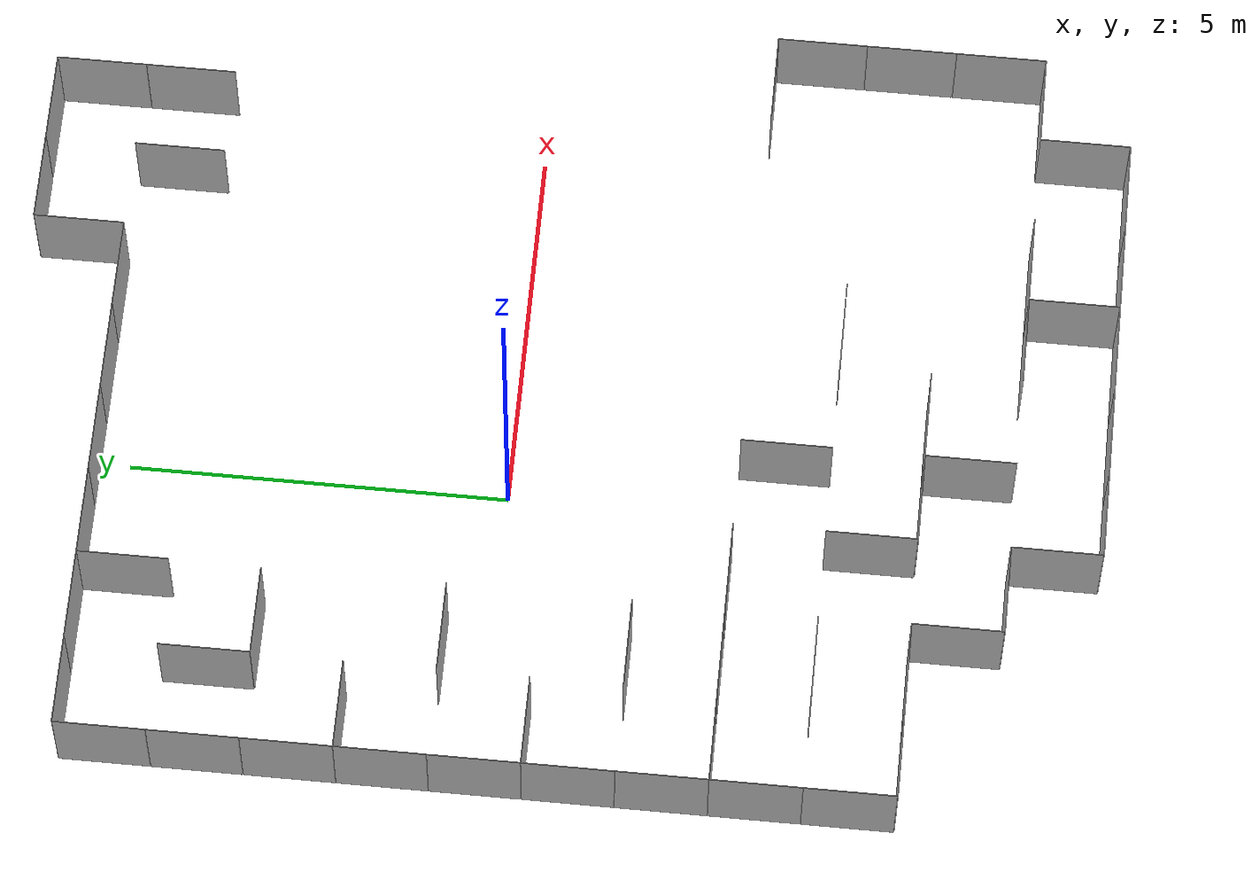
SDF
<sdf version="1.4">
 <world name="default">
  <model name="small_wall_117">
   <static>true</static>
   <link name="small_wall_117_link">
    <pose>2.4 -3.6 0 0 0 -3.14159</pose>
    <collision name="small_wall_117_collision">
     <geometry><mesh><uri>model://small_wall/meshes/small_wall.dae</uri><scale>1 1 1</scale></mesh></geometry>
    </collision>
    <visual name="small_wall_117_visual">
     <cast_shadows>false</cast_shadows>
     <geometry><mesh><uri>model://small_wall/meshes/small_wall.dae</uri><scale>1 1 1</scale></mesh></geometry>
    </visual>
   </link>
  </model>
  <model name="small_wall_118">
   <static>true</static>
   <link name="small_wall_118_link">
    <pose>1.2 -3.6 0 0 0 -4.71239</pose>
    <collision name="small_wall_118_collision">
     <geometry><mesh><uri>model://small_wall/meshes/small_wall.dae</uri><scale>1 1 1</scale></mesh></geometry>
    </collision>
    <visual name="small_wall_118_visual">
     <cast_shadows>false</cast_shadows>
     <geometry><mesh><uri>model://small_wall/meshes/small_wall.dae</uri><scale>1 1 1</scale></mesh></geometry>
    </visual>
   </link>
  </model>
  <model name="small_wall_119">
   <static>true</static>
   <link name="small_wall_119_link">
    <pose>-1.2 -4.8 0 0 0 -1.5708</pose>
    <collision name="small_wall_119_collision">
     <geometry><mesh><uri>model://small_wall/meshes/small_wall.dae</uri><scale>1 1 1</scale></mesh></geometry>
    </collision>
    <visual name="small_wall_119_visual">
     <cast_shadows>false</cast_shadows>
     <geometry><mesh><uri>model://small_wall/meshes/small_wall.dae</uri><scale>1 1 1</scale></mesh></geometry>
    </visual>
   </link>
  </model>
  <model name="small_wall_120">
   <static>true</static>
   <link name="small_wall_120_link">
    <pose>0 -6 0 0 0 0</pose>
    <collision name="small_wall_120_collision">
     <geometry><mesh><uri>model://small_wall/meshes/small_wall.dae</uri><scale>1 1 1</scale></mesh></geometry>
    </collision>
    <visual name="small_wall_120_visual">
     <cast_shadows>false</cast_shadows>
     <geometry><mesh><uri>model://small_wall/meshes/small_wall.dae</uri><scale>1 1 1</scale></mesh></geometry>
    </visual>
   </link>
  </model>
  <model name="small_wall_121">
   <static>true</static>
   <link name="small_wall_121_link">
    <pose>1.2 -4.8 0 0 0 -3.14159</pose>
    <collision name="small_wall_121_collision">
     <geometry><mesh><uri>model://small_wall/meshes/small_wall.dae</uri><scale>1 1 1</scale></mesh></geometry>
    </collision>
    <visual name="small_wall_121_visual">
     <cast_shadows>false</cast_shadows>
     <geometry><mesh><uri>model://small_wall/meshes/small_wall.dae</uri><scale>1 1 1</scale></mesh></geometry>
    </visual>
   </link>
  </model>
  <model name="small_wall_122">
   <static>true</static>
   <link name="small_wall_122_link">
    <pose>-2.4 2.4 0 0 0 0</pose>
    <collision name="small_wall_122_collision">
     <geometry><mesh><uri>model://small_wall/meshes/small_wall.dae</uri><scale>1 1 1</scale></mesh></geometry>
    </collision>
    <visual name="small_wall_122_visual">
     <cast_shadows>false</cast_shadows>
     <geometry><mesh><uri>model://small_wall/meshes/small_wall.dae</uri><scale>1 1 1</scale></mesh></geometry>
    </visual>
   </link>
  </model>
  <model name="small_wall_123">
   <static>true</static>
   <link name="small_wall_123_link">
    <pose>-3.6 3.6 0 0 0 -1.5708</pose>
    <collision name="small_wall_123_collision">
     <geometry><mesh><uri>model://small_wall/meshes/small_wall.dae</uri><scale>1 1 1</scale></mesh></geometry>
    </collision>
    <visual name="small_wall_123_visual">
     <cast_shadows>false</cast_shadows>
     <geometry><mesh><uri>model://small_wall/meshes/small_wall.dae</uri><scale>1 1 1</scale></mesh></geometry>
    </visual>
   </link>
  </model>
  <model name="small_wall_124">
   <static>true</static>
   <link name="small_wall_124_link">
    <pose>-3.6 3.6 0 0 0 -4.71239</pose>
    <collision name="small_wall_124_collision">
     <geometry><mesh><uri>model://small_wall/meshes/small_wall.dae</uri><scale>1 1 1</scale></mesh></geometry>
    </collision>
    <visual name="small_wall_124_visual">
     <cast_shadows>false</cast_shadows>
     <geometry><mesh><uri>model://small_wall/meshes/small_wall.dae</uri><scale>1 1 1</scale></mesh></geometry>
    </visual>
   </link>
  </model>
  <model name="small_wall_125">
   <static>true</static>
   <link name="small_wall_125_link">
    <pose>-3.6 4.8 0 0 0 -4.71239</pose>
    <collision name="small_wall_125_collision">
     <geometry><mesh><uri>model://small_wall/meshes/small_wall.dae</uri><scale>1 1 1</scale></mesh></geometry>
    </collision>
    <visual name="small_wall_125_visual">
     <cast_shadows>false</cast_shadows>
     <geometry><mesh><uri>model://small_wall/meshes/small_wall.dae</uri><scale>1 1 1</scale></mesh></geometry>
    </visual>
   </link>
  </model>
  <model name="small_wall_126">
   <static>true</static>
   <link name="small_wall_126_link">
    <pose>-3.6 4.8 0 0 0 0</pose>
    <collision name="small_wall_126_collision">
     <geometry><mesh><uri>model://small_wall/meshes/small_wall.dae</uri><scale>1 1 1</scale></mesh></geometry>
    </collision>
    <visual name="small_wall_126_visual">
     <cast_shadows>false</cast_shadows>
     <geometry><mesh><uri>model://small_wall/meshes/small_wall.dae</uri><scale>1 1 1</scale></mesh></geometry>
    </visual>
   </link>
  </model>
  <model name="small_wall_127">
   <static>true</static>
   <link name="small_wall_127_link">
    <pose>-2.4 4.8 0 0 0 0</pose>
    <collision name="small_wall_127_collision">
     <geometry><mesh><uri>model://small_wall/meshes/small_wall.dae</uri><scale>1 1 1</scale></mesh></geometry>
    </collision>
    <visual name="small_wall_127_visual">
     <cast_shadows>false</cast_shadows>
     <geometry><mesh><uri>model://small_wall/meshes/small_wall.dae</uri><scale>1 1 1</scale></mesh></geometry>
    </visual>
   </link>
  </model>
  <model name="small_wall_128">
   <static>true</static>
   <link name="small_wall_128_link">
    <pose>-2.4 4.8 0 0 0 -1.5708</pose>
    <collision name="small_wall_128_collision">
     <geometry><mesh><uri>model://small_wall/meshes/small_wall.dae</uri><scale>1 1 1</scale></mesh></geometry>
    </collision>
    <visual name="small_wall_128_visual">
     <cast_shadows>false</cast_shadows>
     <geometry><mesh><uri>model://small_wall/meshes/small_wall.dae</uri><scale>1 1 1</scale></mesh></geometry>
    </visual>
   </link>
  </model>
  <model name="small_wall_129">
   <static>true</static>
   <link name="small_wall_129_link">
    <pose>-1.2 4.8 0 0 0 0</pose>
    <collision name="small_wall_129_collision">
     <geometry><mesh><uri>model://small_wall/meshes/small_wall.dae</uri><scale>1 1 1</scale></mesh></geometry>
    </collision>
    <visual name="small_wall_129_visual">
     <cast_shadows>false</cast_shadows>
     <geometry><mesh><uri>model://small_wall/meshes/small_wall.dae</uri><scale>1 1 1</scale></mesh></geometry>
    </visual>
   </link>
  </model>
  <model name="small_wall_130">
   <static>true</static>
   <link name="small_wall_130_link">
    <pose>0 4.8 0 0 0 0</pose>
    <collision name="small_wall_130_collision">
     <geometry><mesh><uri>model://small_wall/meshes/small_wall.dae</uri><scale>1 1 1</scale></mesh></geometry>
    </collision>
    <visual name="small_wall_130_visual">
     <cast_shadows>false</cast_shadows>
     <geometry><mesh><uri>model://small_wall/meshes/small_wall.dae</uri><scale>1 1 1</scale></mesh></geometry>
    </visual>
   </link>
  </model>
  <model name="small_wall_131">
   <static>true</static>
   <link name="small_wall_131_link">
    <pose>-4.8 2.4 0 0 0 -1.5708</pose>
    <collision name="small_wall_131_collision">
     <geometry><mesh><uri>model://small_wall/meshes/small_wall.dae</uri><scale>1 1 1</scale></mesh></geometry>
    </collision>
    <visual name="small_wall_131_visual">
     <cast_shadows>false</cast_shadows>
     <geometry><mesh><uri>model://small_wall/meshes/small_wall.dae</uri><scale>1 1 1</scale></mesh></geometry>
    </visual>
   </link>
  </model>
  <model name="small_wall_132">
   <static>true</static>
   <link name="small_wall_132_link">
    <pose>-4.8 1.2 0 0 0 -1.5708</pose>
    <collision name="small_wall_132_collision">
     <geometry><mesh><uri>model://small_wall/meshes/small_wall.dae</uri><scale>1 1 1</scale></mesh></geometry>
    </collision>
    <visual name="small_wall_132_visual">
     <cast_shadows>false</cast_shadows>
     <geometry><mesh><uri>model://small_wall/meshes/small_wall.dae</uri><scale>1 1 1</scale></mesh></geometry>
    </visual>
   </link>
  </model>
  <model name="small_wall_133">
   <static>true</static>
   <link name="small_wall_133_link">
    <pose>-3.6 2.4 0 0 0 -3.14159</pose>
    <collision name="small_wall_133_collision">
     <geometry><mesh><uri>model://small_wall/meshes/small_wall.dae</uri><scale>1 1 1</scale></mesh></geometry>
    </collision>
    <visual name="small_wall_133_visual">
     <cast_shadows>false</cast_shadows>
     <geometry><mesh><uri>model://small_wall/meshes/small_wall.dae</uri><scale>1 1 1</scale></mesh></geometry>
    </visual>
   </link>
  </model>
  <model name="small_wall_134">
   <static>true</static>
   <link name="small_wall_134_link">
    <pose>-3.6 0 0 0 0 -4.71239</pose>
    <collision name="small_wall_134_collision">
     <geometry><mesh><uri>model://small_wall/meshes/small_wall.dae</uri><scale>1 1 1</scale></mesh></geometry>
    </collision>
    <visual name="small_wall_134_visual">
     <cast_shadows>false</cast_shadows>
     <geometry><mesh><uri>model://small_wall/meshes/small_wall.dae</uri><scale>1 1 1</scale></mesh></geometry>
    </visual>
   </link>
  </model>
  <model name="small_wall_135">
   <static>true</static>
   <link name="small_wall_135_link">
    <pose>-2.4 0 0 0 0 0</pose>
    <collision name="small_wall_135_collision">
     <geometry><mesh><uri>model://small_wall/meshes/small_wall.dae</uri><scale>1 1 1</scale></mesh></geometry>
    </collision>
    <visual name="small_wall_135_visual">
     <cast_shadows>false</cast_shadows>
     <geometry><mesh><uri>model://small_wall/meshes/small_wall.dae</uri><scale>1 1 1</scale></mesh></geometry>
    </visual>
   </link>
  </model>
  <model name="small_wall_136">
   <static>true</static>
   <link name="small_wall_136_link">
    <pose>-3.6 0 0 0 0 -3.14159</pose>
    <collision name="small_wall_136_collision">
     <geometry><mesh><uri>model://small_wall/meshes/small_wall.dae</uri><scale>1 1 1</scale></mesh></geometry>
    </collision>
    <visual name="small_wall_136_visual">
     <cast_shadows>false</cast_shadows>
     <geometry><mesh><uri>model://small_wall/meshes/small_wall.dae</uri><scale>1 1 1</scale></mesh></geometry>
    </visual>
   </link>
  </model>
  <model name="small_wall_137">
   <static>true</static>
   <link name="small_wall_137_link">
    <pose>-2.4 -1.2 0 0 0 -3.14159</pose>
    <collision name="small_wall_137_collision">
     <geometry><mesh><uri>model://small_wall/meshes/small_wall.dae</uri><scale>1 1 1</scale></mesh></geometry>
    </collision>
    <visual name="small_wall_137_visual">
     <cast_shadows>false</cast_shadows>
     <geometry><mesh><uri>model://small_wall/meshes/small_wall.dae</uri><scale>1 1 1</scale></mesh></geometry>
    </visual>
   </link>
  </model>
  <model name="small_wall_138">
   <static>true</static>
   <link name="small_wall_138_link">
    <pose>-3.6 -1.2 0 0 0 -4.71239</pose>
    <collision name="small_wall_138_collision">
     <geometry><mesh><uri>model://small_wall/meshes/small_wall.dae</uri><scale>1 1 1</scale></mesh></geometry>
    </collision>
    <visual name="small_wall_138_visual">
     <cast_shadows>false</cast_shadows>
     <geometry><mesh><uri>model://small_wall/meshes/small_wall.dae</uri><scale>1 1 1</scale></mesh></geometry>
    </visual>
   </link>
  </model>
  <model name="small_wall_139">
   <static>true</static>
   <link name="small_wall_139_link">
    <pose>-3.6 -2.4 0 0 0 -4.71239</pose>
    <collision name="small_wall_139_collision">
     <geometry><mesh><uri>model://small_wall/meshes/small_wall.dae</uri><scale>1 1 1</scale></mesh></geometry>
    </collision>
    <visual name="small_wall_139_visual">
     <cast_shadows>false</cast_shadows>
     <geometry><mesh><uri>model://small_wall/meshes/small_wall.dae</uri><scale>1 1 1</scale></mesh></geometry>
    </visual>
   </link>
  </model>
  <model name="small_wall_140">
   <static>true</static>
   <link name="small_wall_140_link">
    <pose>1.2 4.8 0 0 0 0</pose>
    <collision name="small_wall_140_collision">
     <geometry><mesh><uri>model://small_wall/meshes/small_wall.dae</uri><scale>1 1 1</scale></mesh></geometry>
    </collision>
    <visual name="small_wall_140_visual">
     <cast_shadows>false</cast_shadows>
     <geometry><mesh><uri>model://small_wall/meshes/small_wall.dae</uri><scale>1 1 1</scale></mesh></geometry>
    </visual>
   </link>
  </model>
  <model name="small_wall_141">
   <static>true</static>
   <link name="small_wall_141_link">
    <pose>2.4 4.8 0 0 0 0</pose>
    <collision name="small_wall_141_collision">
     <geometry><mesh><uri>model://small_wall/meshes/small_wall.dae</uri><scale>1 1 1</scale></mesh></geometry>
    </collision>
    <visual name="small_wall_141_visual">
     <cast_shadows>false</cast_shadows>
     <geometry><mesh><uri>model://small_wall/meshes/small_wall.dae</uri><scale>1 1 1</scale></mesh></geometry>
    </visual>
   </link>
  </model>
  <model name="small_wall_142">
   <static>true</static>
   <link name="small_wall_142_link">
    <pose>4.8 4.8 0 0 0 -4.71239</pose>
    <collision name="small_wall_142_collision">
     <geometry><mesh><uri>model://small_wall/meshes/small_wall.dae</uri><scale>1 1 1</scale></mesh></geometry>
    </collision>
    <visual name="small_wall_142_visual">
     <cast_shadows>false</cast_shadows>
     <geometry><mesh><uri>model://small_wall/meshes/small_wall.dae</uri><scale>1 1 1</scale></mesh></geometry>
    </visual>
   </link>
  </model>
  <model name="small_wall_143">
   <static>true</static>
   <link name="small_wall_143_link">
    <pose>2.4 6 0 0 0 -1.5708</pose>
    <collision name="small_wall_143_collision">
     <geometry><mesh><uri>model://small_wall/meshes/small_wall.dae</uri><scale>1 1 1</scale></mesh></geometry>
    </collision>
    <visual name="small_wall_143_visual">
     <cast_shadows>false</cast_shadows>
     <geometry><mesh><uri>model://small_wall/meshes/small_wall.dae</uri><scale>1 1 1</scale></mesh></geometry>
    </visual>
   </link>
  </model>
  <model name="small_wall_144">
   <static>true</static>
   <link name="small_wall_144_link">
    <pose>3.6 6 0 0 0 0</pose>
    <collision name="small_wall_144_collision">
     <geometry><mesh><uri>model://small_wall/meshes/small_wall.dae</uri><scale>1 1 1</scale></mesh></geometry>
    </collision>
    <visual name="small_wall_144_visual">
     <cast_shadows>false</cast_shadows>
     <geometry><mesh><uri>model://small_wall/meshes/small_wall.dae</uri><scale>1 1 1</scale></mesh></geometry>
    </visual>
   </link>
  </model>
  <model name="small_wall_145">
   <static>true</static>
   <link name="small_wall_145_link">
    <pose>4.8 6 0 0 0 0</pose>
    <collision name="small_wall_145_collision">
     <geometry><mesh><uri>model://small_wall/meshes/small_wall.dae</uri><scale>1 1 1</scale></mesh></geometry>
    </collision>
    <visual name="small_wall_145_visual">
     <cast_shadows>false</cast_shadows>
     <geometry><mesh><uri>model://small_wall/meshes/small_wall.dae</uri><scale>1 1 1</scale></mesh></geometry>
    </visual>
   </link>
  </model>
  <model name="small_wall_146">
   <static>true</static>
   <link name="small_wall_146_link">
    <pose>4.8 6 0 0 0 -1.5708</pose>
    <collision name="small_wall_146_collision">
     <geometry><mesh><uri>model://small_wall/meshes/small_wall.dae</uri><scale>1 1 1</scale></mesh></geometry>
    </collision>
    <visual name="small_wall_146_visual">
     <cast_shadows>false</cast_shadows>
     <geometry><mesh><uri>model://small_wall/meshes/small_wall.dae</uri><scale>1 1 1</scale></mesh></geometry>
    </visual>
   </link>
  </model>
  <model name="small_wall_147">
   <static>true</static>
   <link name="small_wall_147_link">
    <pose>4.8 4.8 0 0 0 -1.5708</pose>
    <collision name="small_wall_147_collision">
     <geometry><mesh><uri>model://small_wall/meshes/small_wall.dae</uri><scale>1 1 1</scale></mesh></geometry>
    </collision>
    <visual name="small_wall_147_visual">
     <cast_shadows>false</cast_shadows>
     <geometry><mesh><uri>model://small_wall/meshes/small_wall.dae</uri><scale>1 1 1</scale></mesh></geometry>
    </visual>
   </link>
  </model>
  <model name="small_wall_148">
   <static>true</static>
   <link name="small_wall_148_link">
    <pose>-3.6 -2.4 0 0 0 -3.14159</pose>
    <collision name="small_wall_148_collision">
     <geometry><mesh><uri>model://small_wall/meshes/small_wall.dae</uri><scale>1 1 1</scale></mesh></geometry>
    </collision>
    <visual name="small_wall_148_visual">
     <cast_shadows>false</cast_shadows>
     <geometry><mesh><uri>model://small_wall/meshes/small_wall.dae</uri><scale>1 1 1</scale></mesh></geometry>
    </visual>
   </link>
  </model>
  <model name="small_wall_149">
   <static>true</static>
   <link name="small_wall_149_link">
    <pose>-2.4 -2.4 0 0 0 -3.14159</pose>
    <collision name="small_wall_149_collision">
     <geometry><mesh><uri>model://small_wall/meshes/small_wall.dae</uri><scale>1 1 1</scale></mesh></geometry>
    </collision>
    <visual name="small_wall_149_visual">
     <cast_shadows>false</cast_shadows>
     <geometry><mesh><uri>model://small_wall/meshes/small_wall.dae</uri><scale>1 1 1</scale></mesh></geometry>
    </visual>
   </link>
  </model>
  <model name="small_wall_150">
   <static>true</static>
   <link name="small_wall_150_link">
    <pose>-1.2 -2.4 0 0 0 -3.14159</pose>
    <collision name="small_wall_150_collision">
     <geometry><mesh><uri>model://small_wall/meshes/small_wall.dae</uri><scale>1 1 1</scale></mesh></geometry>
    </collision>
    <visual name="small_wall_150_visual">
     <cast_shadows>false</cast_shadows>
     <geometry><mesh><uri>model://small_wall/meshes/small_wall.dae</uri><scale>1 1 1</scale></mesh></geometry>
    </visual>
   </link>
  </model>
  <model name="small_wall_151">
   <static>true</static>
   <link name="small_wall_151_link">
    <pose>-2.4 -3.6 0 0 0 -3.14159</pose>
    <collision name="small_wall_151_collision">
     <geometry><mesh><uri>model://small_wall/meshes/small_wall.dae</uri><scale>1 1 1</scale></mesh></geometry>
    </collision>
    <visual name="small_wall_151_visual">
     <cast_shadows>false</cast_shadows>
     <geometry><mesh><uri>model://small_wall/meshes/small_wall.dae</uri><scale>1 1 1</scale></mesh></geometry>
    </visual>
   </link>
  </model>
  <model name="small_wall_152">
   <static>true</static>
   <link name="small_wall_152_link">
    <pose>-3.6 -3.6 0 0 0 -4.71239</pose>
    <collision name="small_wall_152_collision">
     <geometry><mesh><uri>model://small_wall/meshes/small_wall.dae</uri><scale>1 1 1</scale></mesh></geometry>
    </collision>
    <visual name="small_wall_152_visual">
     <cast_shadows>false</cast_shadows>
     <geometry><mesh><uri>model://small_wall/meshes/small_wall.dae</uri><scale>1 1 1</scale></mesh></geometry>
    </visual>
   </link>
  </model>
  <model name="small_wall_153">
   <static>true</static>
   <link name="small_wall_153_link">
    <pose>-3.6 -4.8 0 0 0 -4.71239</pose>
    <collision name="small_wall_153_collision">
     <geometry><mesh><uri>model://small_wall/meshes/small_wall.dae</uri><scale>1 1 1</scale></mesh></geometry>
    </collision>
    <visual name="small_wall_153_visual">
     <cast_shadows>false</cast_shadows>
     <geometry><mesh><uri>model://small_wall/meshes/small_wall.dae</uri><scale>1 1 1</scale></mesh></geometry>
    </visual>
   </link>
  </model>
  <model name="small_wall_154">
   <static>true</static>
   <link name="small_wall_154_link">
    <pose>-3.6 -6 0 0 0 0</pose>
    <collision name="small_wall_154_collision">
     <geometry><mesh><uri>model://small_wall/meshes/small_wall.dae</uri><scale>1 1 1</scale></mesh></geometry>
    </collision>
    <visual name="small_wall_154_visual">
     <cast_shadows>false</cast_shadows>
     <geometry><mesh><uri>model://small_wall/meshes/small_wall.dae</uri><scale>1 1 1</scale></mesh></geometry>
    </visual>
   </link>
  </model>
  <model name="small_wall_155">
   <static>true</static>
   <link name="small_wall_155_link">
    <pose>-2.4 -4.8 0 0 0 -3.14159</pose>
    <collision name="small_wall_155_collision">
     <geometry><mesh><uri>model://small_wall/meshes/small_wall.dae</uri><scale>1 1 1</scale></mesh></geometry>
    </collision>
    <visual name="small_wall_155_visual">
     <cast_shadows>false</cast_shadows>
     <geometry><mesh><uri>model://small_wall/meshes/small_wall.dae</uri><scale>1 1 1</scale></mesh></geometry>
    </visual>
   </link>
  </model>
  <model name="small_wall_156">
   <static>true</static>
   <link name="small_wall_156_link">
    <pose>-1.2 -6 0 0 0 -4.71239</pose>
    <collision name="small_wall_156_collision">
     <geometry><mesh><uri>model://small_wall/meshes/small_wall.dae</uri><scale>1 1 1</scale></mesh></geometry>
    </collision>
    <visual name="small_wall_156_visual">
     <cast_shadows>false</cast_shadows>
     <geometry><mesh><uri>model://small_wall/meshes/small_wall.dae</uri><scale>1 1 1</scale></mesh></geometry>
    </visual>
   </link>
  </model>
  <model name="small_wall_157">
   <static>true</static>
   <link name="small_wall_157_link">
    <pose>-1.2 -6 0 0 0 -3.14159</pose>
    <collision name="small_wall_157_collision">
     <geometry><mesh><uri>model://small_wall/meshes/small_wall.dae</uri><scale>1 1 1</scale></mesh></geometry>
    </collision>
    <visual name="small_wall_157_visual">
     <cast_shadows>false</cast_shadows>
     <geometry><mesh><uri>model://small_wall/meshes/small_wall.dae</uri><scale>1 1 1</scale></mesh></geometry>
    </visual>
   </link>
  </model>
  <model name="small_wall_158">
   <static>true</static>
   <link name="small_wall_158_link">
    <pose>1.2 -6 0 0 0 -4.71239</pose>
    <collision name="small_wall_158_collision">
     <geometry><mesh><uri>model://small_wall/meshes/small_wall.dae</uri><scale>1 1 1</scale></mesh></geometry>
    </collision>
    <visual name="small_wall_158_visual">
     <cast_shadows>false</cast_shadows>
     <geometry><mesh><uri>model://small_wall/meshes/small_wall.dae</uri><scale>1 1 1</scale></mesh></geometry>
    </visual>
   </link>
  </model>
  <model name="small_wall_159">
   <static>true</static>
   <link name="small_wall_159_link">
    <pose>-1.2 -7.2 0 0 0 -1.5708</pose>
    <collision name="small_wall_159_collision">
     <geometry><mesh><uri>model://small_wall/meshes/small_wall.dae</uri><scale>1 1 1</scale></mesh></geometry>
    </collision>
    <visual name="small_wall_159_visual">
     <cast_shadows>false</cast_shadows>
     <geometry><mesh><uri>model://small_wall/meshes/small_wall.dae</uri><scale>1 1 1</scale></mesh></geometry>
    </visual>
   </link>
  </model>
  <model name="small_wall_160">
   <static>true</static>
   <link name="small_wall_160_link">
    <pose>0 -7.2 0 0 0 -3.14159</pose>
    <collision name="small_wall_160_collision">
     <geometry><mesh><uri>model://small_wall/meshes/small_wall.dae</uri><scale>1 1 1</scale></mesh></geometry>
    </collision>
    <visual name="small_wall_160_visual">
     <cast_shadows>false</cast_shadows>
     <geometry><mesh><uri>model://small_wall/meshes/small_wall.dae</uri><scale>1 1 1</scale></mesh></geometry>
    </visual>
   </link>
  </model>
  <model name="small_wall_161">
   <static>true</static>
   <link name="small_wall_161_link">
    <pose>1.2 -7.2 0 0 0 -3.14159</pose>
    <collision name="small_wall_161_collision">
     <geometry><mesh><uri>model://small_wall/meshes/small_wall.dae</uri><scale>1 1 1</scale></mesh></geometry>
    </collision>
    <visual name="small_wall_161_visual">
     <cast_shadows>false</cast_shadows>
     <geometry><mesh><uri>model://small_wall/meshes/small_wall.dae</uri><scale>1 1 1</scale></mesh></geometry>
    </visual>
   </link>
  </model>
  <model name="small_wall_162">
   <static>true</static>
   <link name="small_wall_162_link">
    <pose>2.4 -6 0 0 0 -3.14159</pose>
    <collision name="small_wall_162_collision">
     <geometry><mesh><uri>model://small_wall/meshes/small_wall.dae</uri><scale>1 1 1</scale></mesh></geometry>
    </collision>
    <visual name="small_wall_162_visual">
     <cast_shadows>false</cast_shadows>
     <geometry><mesh><uri>model://small_wall/meshes/small_wall.dae</uri><scale>1 1 1</scale></mesh></geometry>
    </visual>
   </link>
  </model>
  <model name="small_wall_163">
   <static>true</static>
   <link name="small_wall_163_link">
    <pose>2.4 -7.2 0 0 0 -3.14159</pose>
    <collision name="small_wall_163_collision">
     <geometry><mesh><uri>model://small_wall/meshes/small_wall.dae</uri><scale>1 1 1</scale></mesh></geometry>
    </collision>
    <visual name="small_wall_163_visual">
     <cast_shadows>false</cast_shadows>
     <geometry><mesh><uri>model://small_wall/meshes/small_wall.dae</uri><scale>1 1 1</scale></mesh></geometry>
    </visual>
   </link>
  </model>
  <model name="small_wall_164">
   <static>true</static>
   <link name="small_wall_164_link">
    <pose>3.6 -7.2 0 0 0 -4.71239</pose>
    <collision name="small_wall_164_collision">
     <geometry><mesh><uri>model://small_wall/meshes/small_wall.dae</uri><scale>1 1 1</scale></mesh></geometry>
    </collision>
    <visual name="small_wall_164_visual">
     <cast_shadows>false</cast_shadows>
     <geometry><mesh><uri>model://small_wall/meshes/small_wall.dae</uri><scale>1 1 1</scale></mesh></geometry>
    </visual>
   </link>
  </model>
  <model name="small_wall_165">
   <static>true</static>
   <link name="small_wall_165_link">
    <pose>3.6 -7.2 0 0 0 0</pose>
    <collision name="small_wall_165_collision">
     <geometry><mesh><uri>model://small_wall/meshes/small_wall.dae</uri><scale>1 1 1</scale></mesh></geometry>
    </collision>
    <visual name="small_wall_165_visual">
     <cast_shadows>false</cast_shadows>
     <geometry><mesh><uri>model://small_wall/meshes/small_wall.dae</uri><scale>1 1 1</scale></mesh></geometry>
    </visual>
   </link>
  </model>
  <model name="small_wall_166">
   <static>true</static>
   <link name="small_wall_166_link">
    <pose>3.6 -8.4 0 0 0 0</pose>
    <collision name="small_wall_166_collision">
     <geometry><mesh><uri>model://small_wall/meshes/small_wall.dae</uri><scale>1 1 1</scale></mesh></geometry>
    </collision>
    <visual name="small_wall_166_visual">
     <cast_shadows>false</cast_shadows>
     <geometry><mesh><uri>model://small_wall/meshes/small_wall.dae</uri><scale>1 1 1</scale></mesh></geometry>
    </visual>
   </link>
  </model>
  <model name="small_wall_167">
   <static>true</static>
   <link name="small_wall_167_link">
    <pose>4.8 -7.2 0 0 0 -3.14159</pose>
    <collision name="small_wall_167_collision">
     <geometry><mesh><uri>model://small_wall/meshes/small_wall.dae</uri><scale>1 1 1</scale></mesh></geometry>
    </collision>
    <visual name="small_wall_167_visual">
     <cast_shadows>false</cast_shadows>
     <geometry><mesh><uri>model://small_wall/meshes/small_wall.dae</uri><scale>1 1 1</scale></mesh></geometry>
    </visual>
   </link>
  </model>
  <model name="small_wall_168">
   <static>true</static>
   <link name="small_wall_168_link">
    <pose>6 -7.2 0 0 0 -4.71239</pose>
    <collision name="small_wall_168_collision">
     <geometry><mesh><uri>model://small_wall/meshes/small_wall.dae</uri><scale>1 1 1</scale></mesh></geometry>
    </collision>
    <visual name="small_wall_168_visual">
     <cast_shadows>false</cast_shadows>
     <geometry><mesh><uri>model://small_wall/meshes/small_wall.dae</uri><scale>1 1 1</scale></mesh></geometry>
    </visual>
   </link>
  </model>
  <model name="small_wall_169">
   <static>true</static>
   <link name="small_wall_169_link">
    <pose>6 -6 0 0 0 -3.14159</pose>
    <collision name="small_wall_169_collision">
     <geometry><mesh><uri>model://small_wall/meshes/small_wall.dae</uri><scale>1 1 1</scale></mesh></geometry>
    </collision>
    <visual name="small_wall_169_visual">
     <cast_shadows>false</cast_shadows>
     <geometry><mesh><uri>model://small_wall/meshes/small_wall.dae</uri><scale>1 1 1</scale></mesh></geometry>
    </visual>
   </link>
  </model>
  <model name="small_wall_170">
   <static>true</static>
   <link name="small_wall_170_link">
    <pose>6 -6 0 0 0 -1.5708</pose>
    <collision name="small_wall_170_collision">
     <geometry><mesh><uri>model://small_wall/meshes/small_wall.dae</uri><scale>1 1 1</scale></mesh></geometry>
    </collision>
    <visual name="small_wall_170_visual">
     <cast_shadows>false</cast_shadows>
     <geometry><mesh><uri>model://small_wall/meshes/small_wall.dae</uri><scale>1 1 1</scale></mesh></geometry>
    </visual>
   </link>
  </model>
  <model name="small_wall_171">
   <static>true</static>
   <link name="small_wall_171_link">
    <pose>6 -3.6 0 0 0 0</pose>
    <collision name="small_wall_171_collision">
     <geometry><mesh><uri>model://small_wall/meshes/small_wall.dae</uri><scale>1 1 1</scale></mesh></geometry>
    </collision>
    <visual name="small_wall_171_visual">
     <cast_shadows>false</cast_shadows>
     <geometry><mesh><uri>model://small_wall/meshes/small_wall.dae</uri><scale>1 1 1</scale></mesh></geometry>
    </visual>
   </link>
  </model>
  <model name="small_wall_172">
   <static>true</static>
   <link name="small_wall_172_link">
    <pose>6 -4.8 0 0 0 -1.5708</pose>
    <collision name="small_wall_172_collision">
     <geometry><mesh><uri>model://small_wall/meshes/small_wall.dae</uri><scale>1 1 1</scale></mesh></geometry>
    </collision>
    <visual name="small_wall_172_visual">
     <cast_shadows>false</cast_shadows>
     <geometry><mesh><uri>model://small_wall/meshes/small_wall.dae</uri><scale>1 1 1</scale></mesh></geometry>
    </visual>
   </link>
  </model>
  <model name="small_wall_173">
   <static>true</static>
   <link name="small_wall_173_link">
    <pose>6 -3.6 0 0 0 -1.5708</pose>
    <collision name="small_wall_173_collision">
     <geometry><mesh><uri>model://small_wall/meshes/small_wall.dae</uri><scale>1 1 1</scale></mesh></geometry>
    </collision>
    <visual name="small_wall_173_visual">
     <cast_shadows>false</cast_shadows>
     <geometry><mesh><uri>model://small_wall/meshes/small_wall.dae</uri><scale>1 1 1</scale></mesh></geometry>
    </visual>
   </link>
  </model>
 </world>
</sdf>
